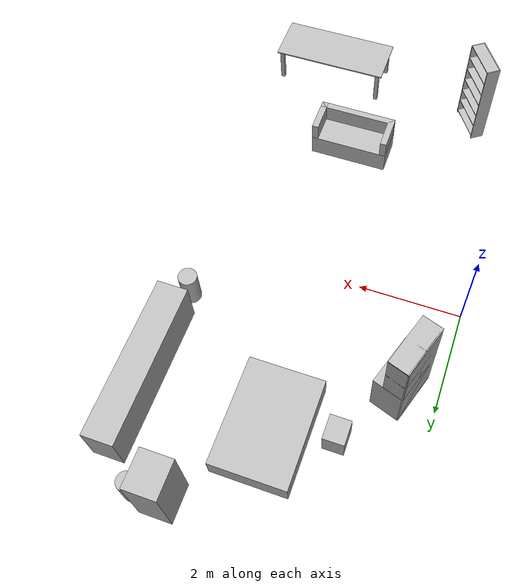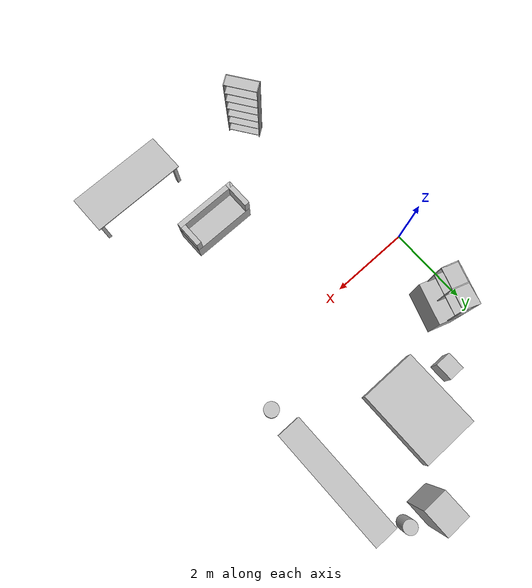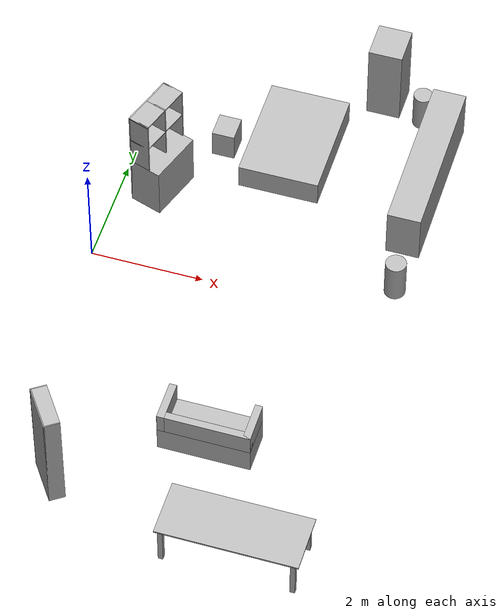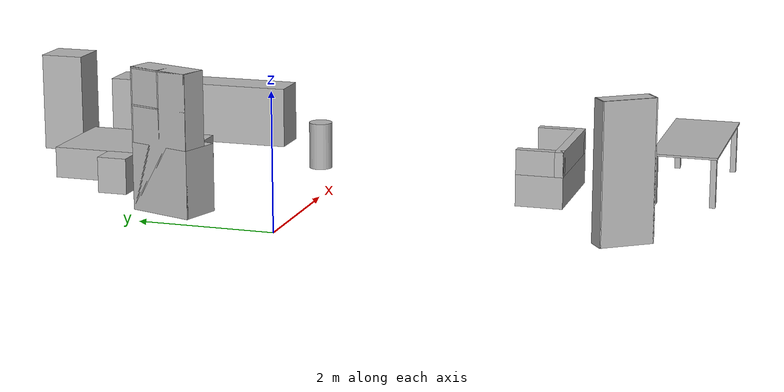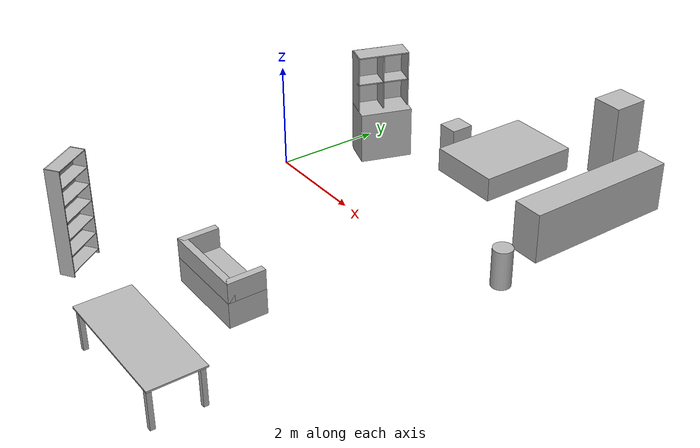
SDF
<sdf version="1.6">
 <world name="reo2016">
  <light name="sun" type="directional">
   <direction>0.5 0.1 -0.9</direction>
   <pose>0 0 10 0 0 0</pose>
   <specular>0.2 0.2 0.2 1</specular>
   <diffuse>0.8 0.8 0.8 1</diffuse>
   <attenuation>
    <range>1000</range>
    <quadratic>0.001</quadratic>
    <constant>0.9</constant>
    <linear>0.01</linear>
   </attenuation>
  </light>
  <model name="kitchen" type="room">
   <link name="in">
    <virtual_volume name="in_vv">
     <geometry><box><size>2.0 3.5 0.01</size></box></geometry>
     <pose>0.0 0.75 0.005 0 0 0</pose>
    </virtual_volume>
   </link>
   <pose>4.5 2.5 0 0 0 0</pose>
   <static>true</static>
  </model>
  <model name="livingroom" type="room">
   <link name="in">
    <virtual_volume name="in_vv">
     <geometry><box><size>5.5 5.6 0.01</size></box></geometry>
     <pose>-1.25 -0.3 0.005 0 0 0</pose>
    </virtual_volume>
   </link>
   <pose>4.0 -4.0 0.0 0 0 0</pose>
   <static>true</static>
  </model>
  <model name="bedroom" type="room">
   <link name="in">
    <virtual_volume name="in_vv">
     <geometry><box><size>3.0 4.0 0.01</size></box></geometry>
     <pose>0.0 0.0 0.005 0 0 0</pose>
    </virtual_volume>
   </link>
   <pose>2.0 2.0 0 0 0 0</pose>
   <static>true</static>
  </model>
  <model name="entrance" type="room">
   <link name="in">
    <virtual_volume name="in_vv">
     <geometry><box><size>2.0 2.0 0.01</size></box></geometry>
     <pose>0.0 0.0 0.005 0 0 0</pose>
    </virtual_volume>
   </link>
   <pose>0.1 0.0 0 0 0 0</pose>
   <static>true</static>
  </model>
  <model name="exit" type="room">
   <link name="in">
    <virtual_volume name="in_vv">
     <geometry><box><size>2.0 2.0 0.01</size></box></geometry>
     <pose>0.0 0.0 0.005 0 0 0</pose>
    </virtual_volume>
   </link>
   <pose>0.1 -1.8 0 0 0 0</pose>
   <static>true</static>
  </model>
  <model name="navigation_waypoint_1" type="waypoint">
   <pose>2.45 -5.22 0 0 0 0</pose>
   <static>true</static>
  </model>
  <model name="navigation_waypoint_2_pre" type="waypoint">
   <pose>4.3 0.4 0 0 0 1.57</pose>
   <static>true</static>
  </model>
  <model name="navigation_waypoint_2" type="waypoint">
   <pose>4.36 3.91 0 0 0 0</pose>
   <static>true</static>
  </model>
  <model name="navigation_waypoint_3" type="waypoint">
   <pose>0.507 -1.84 0 0 0 3.1415</pose>
   <static>true</static>
  </model>
  <model name="initial_pose" type="waypoint"><pose>-0.5 0 0 0 0 0</pose><static>true</static></model>
  <model name="initial_pose_door_A" type="waypoint"><pose>-0.5 0 0 0 0 0</pose><static>true</static></model>
  <model name="initial_pose_door_B" type="waypoint">
   <pose>-0.485 -1.85 0 0 0 0</pose>
   <static>true</static>
  </model>
  <model name="entry_point_A" type="waypoint"><pose>1.0 0.0 0 0 0 0</pose><static>true</static></model>
  <model name="entry_point_B" type="waypoint"><pose>1.0 -2.0 0 0 0 0</pose><static>true</static></model>
  <model name="exit_door_A1" type="waypoint"><pose>-1.0 0.0 0 0 0 3.1415</pose><static>true</static></model>
  <model name="exit_door_A2" type="waypoint"><pose>-2.0 0.5 0 0 0 3.1415</pose><static>true</static></model>
  <model name="exit_door_A3" type="waypoint"><pose>0.5 0.0 0 0 0 3.1415</pose><static>true</static></model>
  <model name="exit_door_B1" type="waypoint"><pose>-1.0 -1.85 0 0 0 3.1415</pose><static>true</static></model>
  <model name="exit_door_B2" type="waypoint"><pose>-1.0 -2.35 0 0 0 3.1415</pose><static>true</static></model>
  <model name="exit_door_B3" type="waypoint"><pose>0.5 -1.85 0 0 0 3.1415</pose><static>true</static></model>
  <model name="rips1" type="waypoint"><pose>4.8 -2.0 0 0 0 1.2</pose><static>true</static></model>
  <model name="rips2" type="waypoint"><pose>2.5 -2.25 0 0 0 0.0</pose><static>true</static></model>
  <model name="rips3" type="waypoint"><pose>2.5 0.0 0 0 0 3.14</pose><static>true</static></model>
  <model name="person_rec_learning" type="waypoint"><pose>3.6 -3.6 0 0 0 0.0</pose><static>true</static></model>
  <model name="person_rec_living_room_1" type="waypoint">
   <pose>3.6 -3.6 0 0 0 3.1415</pose>
   <static>true</static>
  </model>
  <model name="gpsr_starting_pose" type="waypoint">
   <pose>1.755 1.4386 0 0 0 -1.57</pose>
   <static>true</static>
  </model>
  <model name="eegpsr_starting_pose" type="waypoint">
   <pose>0.76 -3.98 0 0 0 2.0</pose>
   <static>true</static>
  </model>
  <include>
   <pose>4.192 -5.189 0.0 0 0 0</pose>
   <name>dinnertable</name>
   <uri>model://reo2016/dinnertable</uri>
  </include>
  <include>
   <pose>0.893 -4.712 0.0 0.0 0.0 3.75</pose>
   <name>bookcase</name>
   <uri>model://reo2016/bookcase</uri>
  </include>
  <include><pose>3.151 -3.216 0.0 0 0 3.1415</pose><name>couch</name><uri>model://reo2016/couch</uri></include>
  <include>
   <pose>5.105 3.052 0.0 0 0 0</pose>
   <name>kitchencounter</name>
   <uri>model://reo2016/kitchencounter</uri>
  </include>
  <include>
   <pose>4.558 4.882 0.0 0 0 0</pose>
   <name>kitchen_trashbin</name>
   <uri>model://reo2016/kitchen_trashbin</uri>
  </include>
  <include><pose>3.92 4.872 0.0 0 0 1.57075</pose><name>fridge</name><uri>model://reo2016/fridge</uri></include>
  <include><pose>2.6725 3.216 0.0 0 0 1.57075</pose><name>bed</name><uri>model://reo2016/bed</uri></include>
  <include>
   <pose>1.5 3.0 0.0 0 0 1.57075</pose>
   <name>nightstand</name>
   <uri>model://reo2016/nightstand</uri>
  </include>
  <include><pose>0.712 1.769 0.0 0 0 1.25</pose><name>closet</name><uri>model://reo2016/closet</uri></include>
  <include>
   <pose>5.131 1.033 0.0 0 0 0</pose>
   <name>hallway_trashbin</name>
   <uri>model://reo2016/hallway_trashbin</uri>
  </include>
  <physics type="ode">
   <real_time_update_rate>333.0</real_time_update_rate>
   <max_step_size>0.003</max_step_size>
   <ode><constraints><cfm>0.0001</cfm></constraints><solver><type>quick</type><iters>100</iters></solver></ode>
  </physics>
 </world>
</sdf>

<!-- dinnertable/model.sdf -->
<sdf version="1.6">
  <model name="reo2016/dinnertable">
    <link name="1_link">
      <collision name="1_col">
        <geometry>
          <box>
            <size>2.41 0.98 0.03</size>
          </box>
        </geometry>
      </collision>
      <visual name="1_vis">
        <geometry>
          <box>
            <size>2.41 0.98 0.03</size>
          </box>
        </geometry>
      </visual>
      <pose>0 0 0.745 0 0 0</pose>
    </link>
    <link name="2_link">
      <collision name="2_col">
        <geometry>
          <box>
            <size>0.085 0.085 0.73</size>
          </box>
        </geometry>
      </collision>
      <visual name="2_vis">
        <geometry>
          <box>
            <size>0.085 0.085 0.73</size>
          </box>
        </geometry>
      </visual>
      <pose>-1.1035 -0.4275 0.365 0 0 0</pose>
    </link>
    <link name="3_link">
      <collision name="3_col">
        <geometry>
          <box>
            <size>0.085 0.085 0.73</size>
          </box>
        </geometry>
      </collision>
      <visual name="3_vis">
        <geometry>
          <box>
            <size>0.085 0.085 0.73</size>
          </box>
        </geometry>
      </visual>
      <pose>1.1035 -0.4275 0.365 0 0 0</pose>
    </link>
    <link name="4_link">
      <collision name="4_col">
        <geometry>
          <box>
            <size>0.085 0.085 0.73</size>
          </box>
        </geometry>
      </collision>
      <visual name="4_vis">
        <geometry>
          <box>
            <size>0.085 0.085 0.73</size>
          </box>
        </geometry>
      </visual>
      <pose>-1.1035 0.4275 0.365 0 0 0</pose>
    </link>
    <link name="5_link">
      <collision name="5_col">
        <geometry>
          <box>
            <size>0.085 0.085 0.73</size>
          </box>
        </geometry>
      </collision>
      <visual name="5_vis">
        <geometry>
          <box>
            <size>0.085 0.085 0.73</size>
          </box>
        </geometry>
      </visual>
      <pose>1.1035 0.4275 0.365 0 0 0</pose>
    </link>
    <link name="on_top_of">
      <virtual_volume name="on_top_of_vv">
        <geometry>
          <box>
            <size>0.5 0.98 0.25</size>
          </box>
        </geometry>
        <pose>-0.95 0.0 0.925 0 0 0</pose>
      </virtual_volume>
    </link>
    <link name="in_front_of">
      <virtual_volume name="in_front_of_vv">
        <geometry>
          <box>
            <size>0.2 0.8 0.01</size>
          </box>
        </geometry>
        <pose>-1.9 0.0 0.005 0 0 0</pose>
      </virtual_volume>
    </link>
    <static>true</static>
  </model>
</sdf>

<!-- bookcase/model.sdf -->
<sdf version="1.6">
  <model name="reo2016/bookcase">
    <link name="1_link">
      <collision name="1_col">
        <geometry>
          <box>
            <size>0.28 0.018 2.025</size>
          </box>
        </geometry>
      </collision>
      <visual name="1_vis">
        <geometry>
          <box>
            <size>0.28 0.018 2.025</size>
          </box>
        </geometry>
      </visual>
      <pose>0 -0.391 1.0125 0 0 0</pose>
    </link>
    <link name="2_link">
      <collision name="2_col">
        <geometry>
          <box>
            <size>0.28 0.018 2.025</size>
          </box>
        </geometry>
      </collision>
      <visual name="2_vis">
        <geometry>
          <box>
            <size>0.28 0.018 2.025</size>
          </box>
        </geometry>
      </visual>
      <pose>0 0.391 1.0125 0 0 0</pose>
    </link>
    <link name="3_link">
      <collision name="3_col">
        <geometry>
          <box>
            <size>0.018 0.8 2.025</size>
          </box>
        </geometry>
      </collision>
      <visual name="3_vis">
        <geometry>
          <box>
            <size>0.018 0.8 2.025</size>
          </box>
        </geometry>
      </visual>
      <pose>0.131 0 1.0125 0 0 0</pose>
    </link>
    <link name="4_link">
      <collision name="4_col">
        <geometry>
          <box>
            <size>0.262 0.764 0.018</size>
          </box>
        </geometry>
      </collision>
      <visual name="4_vis">
        <geometry>
          <box>
            <size>0.262 0.764 0.018</size>
          </box>
        </geometry>
      </visual>
      <pose>-0.009 0 2.016 0 0 0</pose>
    </link>
    <link name="5_link">
      <collision name="5_col">
        <geometry>
          <box>
            <size>0.262 0.764 0.018</size>
          </box>
        </geometry>
      </collision>
      <visual name="5_vis">
        <geometry>
          <box>
            <size>0.262 0.764 0.018</size>
          </box>
        </geometry>
      </visual>
      <pose>-0.009 0 0.081 0 0 0</pose>
    </link>
    <link name="6_link">
      <collision name="6_col">
        <geometry>
          <box>
            <size>0.262 0.764 0.018</size>
          </box>
        </geometry>
      </collision>
      <visual name="6_vis">
        <geometry>
          <box>
            <size>0.262 0.764 0.018</size>
          </box>
        </geometry>
      </visual>
      <pose>-0.009 0 0.408 0 0 0</pose>
    </link>
    <link name="7_link">
      <collision name="7_col">
        <geometry>
          <box>
            <size>0.262 0.764 0.018</size>
          </box>
        </geometry>
      </collision>
      <visual name="7_vis">
        <geometry>
          <box>
            <size>0.262 0.764 0.018</size>
          </box>
        </geometry>
      </visual>
      <pose>-0.009 0 0.729 0 0 0</pose>
    </link>
    <link name="8_link">
      <collision name="8_col">
        <geometry>
          <box>
            <size>0.262 0.764 0.018</size>
          </box>
        </geometry>
      </collision>
      <visual name="8_vis">
        <geometry>
          <box>
            <size>0.262 0.764 0.018</size>
          </box>
        </geometry>
      </visual>
      <pose>-0.009 0 1.053 0 0 0</pose>
    </link>
    <link name="9_link">
      <collision name="9_col">
        <geometry>
          <box>
            <size>0.262 0.764 0.018</size>
          </box>
        </geometry>
      </collision>
      <visual name="9_vis">
        <geometry>
          <box>
            <size>0.262 0.764 0.018</size>
          </box>
        </geometry>
      </visual>
      <pose>-0.009 0 1.368 0 0 0</pose>
    </link>
    <link name="10_link">
      <collision name="10_col">
        <geometry>
          <box>
            <size>0.262 0.764 0.018</size>
          </box>
        </geometry>
      </collision>
      <visual name="10_vis">
        <geometry>
          <box>
            <size>0.262 0.764 0.018</size>
          </box>
        </geometry>
      </visual>
      <pose>-0.009 0 1.689 0 0 0</pose>
    </link>
    <link name="on_top_of">
      <virtual_volume name="on_top_of_vv">
        <geometry>
          <box>
            <size>0.23 0.7 0.25</size>
          </box>
        </geometry>
        <pose>-0.015 0.0 0.895 0 0 0</pose>
      </virtual_volume>
    </link>
    <link name="shelf1">
      <virtual_volume name="shelf1_vv">
        <geometry>
          <box>
            <size>0.23 0.7 0.25</size>
          </box>
        </geometry>
        <pose>-0.015 0.0 0.245 0 0 0</pose>
      </virtual_volume>
    </link>
    <link name="shelf2">
      <virtual_volume name="shelf2_vv">
        <geometry>
          <box>
            <size>0.13 0.5 0.25</size>
          </box>
        </geometry>
        <pose>-0.065 0.0 0.565 0 0 0</pose>
      </virtual_volume>
    </link>
    <link name="shelf3">
      <virtual_volume name="shelf3_vv">
        <geometry>
          <box>
            <size>0.23 0.7 0.25</size>
          </box>
        </geometry>
        <pose>-0.015 0.0 0.895 0 0 0</pose>
      </virtual_volume>
    </link>
    <link name="shelf4">
      <virtual_volume name="shelf4_vv">
        <geometry>
          <box>
            <size>0.23 0.7 0.25</size>
          </box>
        </geometry>
        <pose>-0.015 0.0 1.215 0 0 0</pose>
      </virtual_volume>
    </link>
    <link name="shelf5">
      <virtual_volume name="shelf5_vv">
        <geometry>
          <box>
            <size>0.23 0.7 0.25</size>
          </box>
        </geometry>
        <pose>-0.015 0.0 1.535 0 0 0</pose>
      </virtual_volume>
    </link>
    <link name="shelf6">
      <virtual_volume name="shelf6_vv">
        <geometry>
          <box>
            <size>0.23 0.7 0.25</size>
          </box>
        </geometry>
        <pose>-0.015 0.0 1.855 0 0 0</pose>
      </virtual_volume>
    </link>
    <link name="in_front_of">
      <virtual_volume name="in_front_of_vv">
        <geometry>
          <box>
            <size>0.2 0.4 0.01</size>
          </box>
        </geometry>
        <pose>-0.83 0.0 0.005 0 0 0</pose>
      </virtual_volume>
    </link>
    <static>true</static>
  </model>
</sdf>

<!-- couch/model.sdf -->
<sdf version="1.6">
  <model name="reo2016/couch">
    <link name="1_link">
      <collision name="1_col">
        <geometry>
          <box>
            <size>1.6 0.7 0.47</size>
          </box>
        </geometry>
      </collision>
      <visual name="1_vis">
        <geometry>
          <box>
            <size>1.6 0.7 0.47</size>
          </box>
        </geometry>
      </visual>
      <pose>0.0 0.0 0.235 0 0 0</pose>
    </link>
    <link name="2_link">
      <collision name="2_col">
        <geometry>
          <box>
            <size>1.6 0.13 0.37</size>
          </box>
        </geometry>
      </collision>
      <visual name="2_vis">
        <geometry>
          <box>
            <size>1.6 0.13 0.37</size>
          </box>
        </geometry>
      </visual>
      <pose>0.0 0.285 0.655 0 0 0</pose>
    </link>
    <link name="3_link">
      <collision name="3_col">
        <geometry>
          <box>
            <size>0.13 0.7 0.37</size>
          </box>
        </geometry>
      </collision>
      <visual name="3_vis">
        <geometry>
          <box>
            <size>0.13 0.7 0.37</size>
          </box>
        </geometry>
      </visual>
      <pose>-0.735 0.0 0.655 0 0 0</pose>
    </link>
    <link name="4_link">
      <collision name="4_col">
        <geometry>
          <box>
            <size>0.13 0.7 0.37</size>
          </box>
        </geometry>
      </collision>
      <visual name="4_vis">
        <geometry>
          <box>
            <size>0.13 0.7 0.37</size>
          </box>
        </geometry>
      </visual>
      <pose>0.735 0.0 0.655 0 0 0</pose>
    </link>
    <link name="on_top_of">
      <virtual_volume name="on_top_of_vv">
        <geometry>
          <box>
            <size>1.1 0.35 0.22</size>
          </box>
        </geometry>
        <pose>0.0 -0.175 0.65 0 0 0</pose>
      </virtual_volume>
    </link>
    <link name="in_front_of">
      <virtual_volume name="in_front_of_vv">
        <geometry>
          <box>
            <size>0.6 0.2 0.01</size>
          </box>
        </geometry>
        <pose>0.0 -1.05 0.005 0 0 0</pose>
      </virtual_volume>
    </link>
    <static>true</static>
  </model>
</sdf>

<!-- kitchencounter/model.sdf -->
<sdf version="1.6">
  <model name="reo2016/kitchencounter">
    <link name="1_link">
      <collision name="1_col">
        <geometry>
          <box>
            <size>0.59 3.0 0.95</size>
          </box>
        </geometry>
      </collision>
      <visual name="1_vis">
        <geometry>
          <box>
            <size>0.59 3.0 0.95</size>
          </box>
        </geometry>
      </visual>
      <pose>0.0 0.0 0.475 0 0 0</pose>
    </link>
    <link name="on_top_of">
      <virtual_volume name="on_top_of_vv">
        <geometry>
          <box>
            <size>0.58 3.0 0.31</size>
          </box>
        </geometry>
        <pose>0.0 0.0 1.145 0 0 0</pose>
      </virtual_volume>
    </link>
    <link name="left_of_sink">
      <virtual_volume name="left_of_sink_vv">
        <geometry>
          <box>
            <size>0.58 0.75 0.32</size>
          </box>
        </geometry>
        <pose>0.0 0.875 1.15 0 0 0</pose>
      </virtual_volume>
    </link>
    <link name="right_of_sink">
      <virtual_volume name="right_of_sink_vv">
        <geometry>
          <box>
            <size>0.58 0.75 0.32</size>
          </box>
        </geometry>
        <pose>0.0 -0.875 1.15 0 0 0</pose>
      </virtual_volume>
    </link>
    <link name="in_front_of_left_sink">
      <virtual_volume name="in_front_of_left_sink_vv">
        <geometry>
          <box>
            <size>0.6 0.75 0.01</size>
          </box>
        </geometry>
        <pose>-1.1 0.875 0.005 0 0 0</pose>
      </virtual_volume>
    </link>
    <link name="in_front_of_right_sink">
      <virtual_volume name="in_front_of_right_sink_vv">
        <geometry>
          <box>
            <size>0.6 0.75 0.01</size>
          </box>
        </geometry>
        <pose>-1.1 -0.875 0.005 0 0 0</pose>
      </virtual_volume>
    </link>
    <link name="in_front_of">
      <virtual_volume name="in_front_of_vv">
        <geometry>
          <box>
            <size>0.6 3.0 0.01</size>
          </box>
        </geometry>
        <pose>-1.1 0.0 0.005 0 0 0</pose>
      </virtual_volume>
    </link>
    <static>true</static>
  </model>
</sdf>

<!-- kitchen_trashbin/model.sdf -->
<sdf version="1.6">
  <model name="reo2016/kitchen_trashbin">
    <link name="1_link">
      <collision name="1_col">
        <geometry>
          <cylinder>
            <length>0.71</length>
            <radius>0.17</radius>
          </cylinder>
        </geometry>
      </collision>
      <visual name="1_vis">
        <geometry>
          <cylinder>
            <length>0.71</length>
            <radius>0.17</radius>
          </cylinder>
        </geometry>
      </visual>
      <pose>0 0 0 0 0 0</pose>
    </link>
    <static>true</static>
  </model>
</sdf>

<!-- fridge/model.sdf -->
<sdf version="1.6">
  <model name="reo2016/fridge">
    <link name="1_link">
      <collision name="1_col">
        <geometry>
          <box>
            <size>0.67 0.6 1.53</size>
          </box>
        </geometry>
      </collision>
      <visual name="1_vis">
        <geometry>
          <box>
            <size>0.67 0.6 1.53</size>
          </box>
        </geometry>
      </visual>
      <pose>0.0 0.0 0.765 0 0 0</pose>
    </link>
    <link name="on_top_of">
      <virtual_volume name="on_top_of_vv">
        <geometry>
          <box>
            <size>0.66 0.6 0.25</size>
          </box>
        </geometry>
        <pose>0.0 0.0 1.695 0 0 0</pose>
      </virtual_volume>
    </link>
    <link name="in_front_of">
      <virtual_volume name="in_front_of_vv">
        <geometry>
          <box>
            <size>0.2 0.4 0.01</size>
          </box>
        </geometry>
        <pose>-1.03 0.0 0.005 0 0 0</pose>
      </virtual_volume>
    </link>
    <static>true</static>
  </model>
</sdf>

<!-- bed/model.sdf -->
<sdf version="1.6">
  <model name="reo2016/bed">
    <link name="1_link">
      <collision name="1_col">
        <geometry>
          <box>
            <size>2.0 1.435 0.47</size>
          </box>
        </geometry>
      </collision>
      <visual name="1_vis">
        <geometry>
          <box>
            <size>2.0 1.435 0.47</size>
          </box>
        </geometry>
      </visual>
      <pose>0.0 0.0 0.235 0 0 0</pose>
    </link>
    <link name="on_top_of">
      <virtual_volume name="on_top_of_vv">
        <geometry>
          <box>
            <size>2.0 1.42 0.21</size>
          </box>
        </geometry>
        <pose>0.0 0.0 0.615 0 0 0</pose>
      </virtual_volume>
    </link>
    <link name="in_front_of">
      <virtual_volume name="in_front_of_vv">
        <geometry>
          <box>
            <size>0.2 1.42 0.01</size>
          </box>
        </geometry>
        <pose>-1.7 0.0 0.005 0 0 0</pose>
      </virtual_volume>
    </link>
    <static>true</static>
  </model>
</sdf>

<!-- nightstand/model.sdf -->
<sdf version="1.6">
  <model name="reo2016/nightstand">
    <link name="1_link">
      <collision name="1_col">
        <geometry>
          <box>
            <size>0.45 0.4 0.54</size>
          </box>
        </geometry>
      </collision>
      <visual name="1_vis">
        <geometry>
          <box>
            <size>0.45 0.4 0.54</size>
          </box>
        </geometry>
      </visual>
      <pose>0.0 0.0 0.27 0 0 0</pose>
    </link>
    <link name="on_top_of">
      <virtual_volume name="on_top_of_vv">
        <geometry>
          <box>
            <size>0.45 0.4 0.25</size>
          </box>
        </geometry>
        <pose>0.0 0.0 0.705 0 0 0</pose>
      </virtual_volume>
    </link>
    <link name="in_front_of">
      <virtual_volume name="in_front_of_vv">
        <geometry>
          <box>
            <size>0.2 0.4 0.01</size>
          </box>
        </geometry>
        <pose>-0.925 0.0 0.005 0 0 0</pose>
      </virtual_volume>
    </link>
    <static>true</static>
  </model>
</sdf>

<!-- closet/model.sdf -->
<sdf version="1.6">
  <model name="reo2016/closet">
    <link name="1_link">
      <collision name="1_col">
        <geometry>
          <box>
            <size>1.0 0.6 0.995</size>
          </box>
        </geometry>
      </collision>
      <visual name="1_vis">
        <geometry>
          <box>
            <size>1.0 0.6 0.995</size>
          </box>
        </geometry>
      </visual>
      <pose>0 0 0.4975 0 0 0</pose>
    </link>
    <link name="2_link">
      <collision name="2_col">
        <geometry>
          <box>
            <size>0.022 0.4 1.1</size>
          </box>
        </geometry>
      </collision>
      <visual name="2_vis">
        <geometry>
          <box>
            <size>0.022 0.4 1.1</size>
          </box>
        </geometry>
      </visual>
      <pose>-0.489 0.1 1.545 0 0 0</pose>
    </link>
    <link name="3_link">
      <collision name="3_col">
        <geometry>
          <box>
            <size>0.022 0.4 1.1</size>
          </box>
        </geometry>
      </collision>
      <visual name="3_vis">
        <geometry>
          <box>
            <size>0.022 0.4 1.1</size>
          </box>
        </geometry>
      </visual>
      <pose>0.0 0.1 1.545 0 0 0</pose>
    </link>
    <link name="4_link">
      <collision name="4_col">
        <geometry>
          <box>
            <size>0.022 0.4 1.1</size>
          </box>
        </geometry>
      </collision>
      <visual name="4_vis">
        <geometry>
          <box>
            <size>0.022 0.4 1.1</size>
          </box>
        </geometry>
      </visual>
      <pose>0.489 0.1 1.545 0 0 0</pose>
    </link>
    <link name="5_link">
      <collision name="5_col">
        <geometry>
          <box>
            <size>1.0 0.4 0.022</size>
          </box>
        </geometry>
      </collision>
      <visual name="5_vis">
        <geometry>
          <box>
            <size>1.0 0.4 0.022</size>
          </box>
        </geometry>
      </visual>
      <pose>0.0 0.1 1.541 0 0 0</pose>
    </link>
    <link name="6_link">
      <collision name="6_col">
        <geometry>
          <box>
            <size>1.0 0.4 0.022</size>
          </box>
        </geometry>
      </collision>
      <visual name="6_vis">
        <geometry>
          <box>
            <size>1.0 0.4 0.022</size>
          </box>
        </geometry>
      </visual>
      <pose>0.0 0.1 2.084 0 0 0</pose>
    </link>
    <link name="7_link">
      <collision name="7_col">
        <geometry>
          <box>
            <size>1.0 0.022 2.095</size>
          </box>
        </geometry>
      </collision>
      <visual name="7_vis">
        <geometry>
          <box>
            <size>1.0 0.022 2.095</size>
          </box>
        </geometry>
      </visual>
      <pose>0.0 0.289 1.0475 0 0 0</pose>
    </link>
    <link name="on_top_of">
      <virtual_volume name="on_top_of_vv">
        <geometry>
          <box>
            <size>1.0 0.55 0.215</size>
          </box>
        </geometry>
        <pose>0.0 0.025 1.1425 0 0 0</pose>
      </virtual_volume>
    </link>
    <link name="in_front_of">
      <virtual_volume name="in_front_of_vv">
        <geometry>
          <box>
            <size>1.0 0.2 0.01</size>
          </box>
        </geometry>
        <pose>0.0 -1.0 0.005 0 0 0</pose>
      </virtual_volume>
    </link>
    <static>true</static>
  </model>
</sdf>

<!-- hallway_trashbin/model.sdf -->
<sdf version="1.6">
  <model name="reo2016/hallway_trashbin">
    <link name="1_link">
      <collision name="1_col">
        <geometry>
          <cylinder>
            <length>0.75</length>
            <radius>0.185</radius>
          </cylinder>
        </geometry>
      </collision>
      <visual name="1_vis">
        <geometry>
          <cylinder>
            <length>0.75</length>
            <radius>0.185</radius>
          </cylinder>
        </geometry>
      </visual>
      <pose>0 0 0 0 0 0</pose>
    </link>
    <static>true</static>
  </model>
</sdf>
